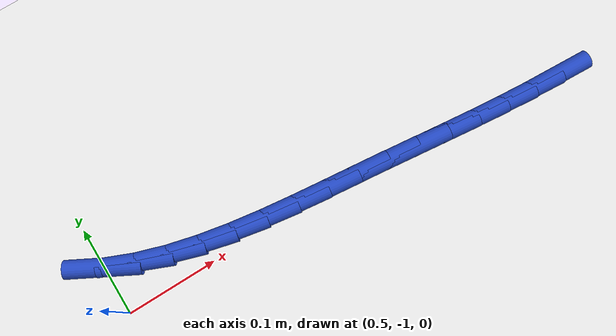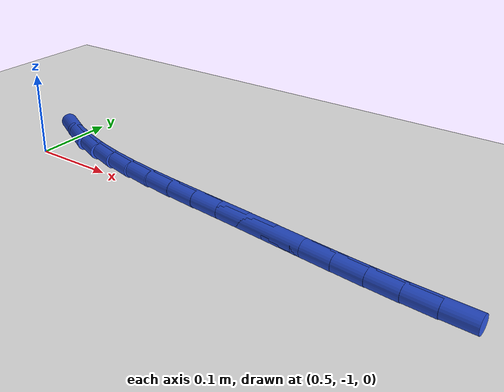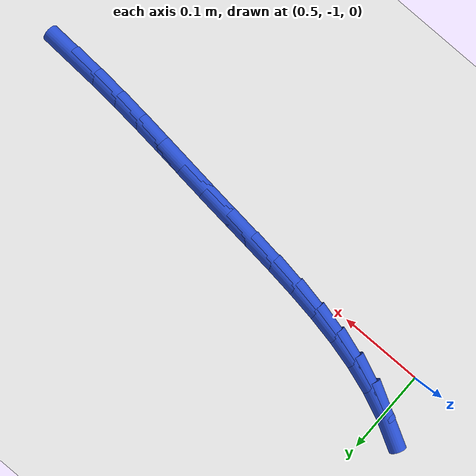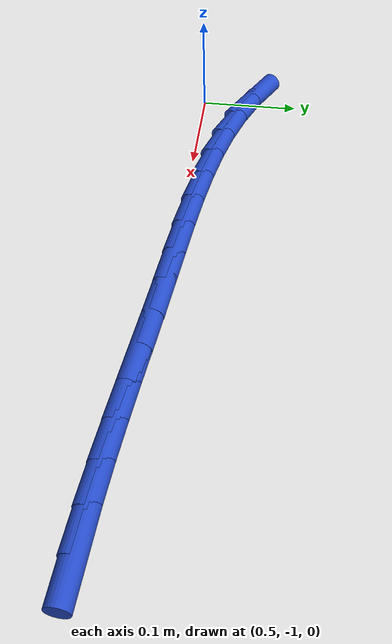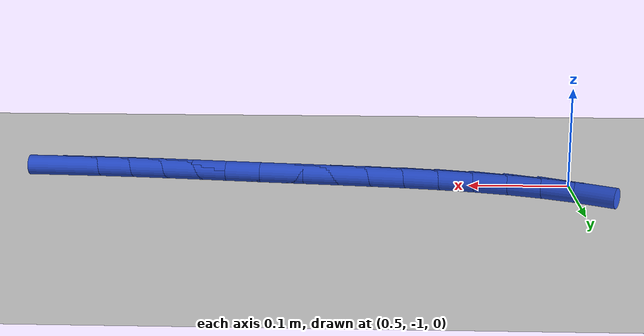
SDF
<sdf version="1.6">
 <world name="default">
  <model name="ground_plane">
   <static>1</static>
   <link name="link">
    <collision name="collision">
     <geometry><plane><normal>0 0 1</normal><size>100 100</size></plane></geometry>
     <surface><friction><ode><mu>100</mu><mu2>50</mu2></ode></friction></surface>
    </collision>
    <visual name="visual">
     <cast_shadows>0</cast_shadows>
     <geometry><plane><normal>0 0 1</normal><size>100 100</size></plane></geometry>
     <material>
      <script><uri>file://media/materials/scripts/gazebo.material</uri><name>Gazebo/WhiteGlow</name></script>
     </material>
    </visual>
   </link>
  </model>
  <model name="line">
   <link name="link_143">
    <pose>1.0131239039212816 -1.0255457856673817 0.01 0 1.57 -0.05281989189314579</pose>
    <collision name="collision">
     <geometry><cylinder><radius>0.01</radius><length>0.08</length></cylinder></geometry>
    </collision>
    <visual name="visual">
     <material>
      <script><name>Gazebo/Blue</name><uri>file://media/materials/scripts/gazebo.material</uri></script>
     </material>
     <geometry><cylinder><radius>0.01</radius><length>0.08</length></cylinder></geometry>
    </visual>
   </link>
   <link name="link_144">
    <pose>0.978989461430741 -1.023741129498226 0.01 0 1.57 -0.0766931520699578</pose>
    <collision name="collision">
     <geometry><cylinder><radius>0.01</radius><length>0.08</length></cylinder></geometry>
    </collision>
    <visual name="visual">
     <material>
      <script><name>Gazebo/Blue</name><uri>file://media/materials/scripts/gazebo.material</uri></script>
     </material>
     <geometry><cylinder><radius>0.01</radius><length>0.08</length></cylinder></geometry>
    </visual>
   </link>
   <link name="link_145">
    <pose>0.9447431755989452 -1.021109512283347 0.01 0 1.57 -0.09465148892315721</pose>
    <collision name="collision">
     <geometry><cylinder><radius>0.01</radius><length>0.08</length></cylinder></geometry>
    </collision>
    <visual name="visual">
     <material>
      <script><name>Gazebo/Blue</name><uri>file://media/materials/scripts/gazebo.material</uri></script>
     </material>
     <geometry><cylinder><radius>0.01</radius><length>0.08</length></cylinder></geometry>
    </visual>
   </link>
   <link name="link_146">
    <pose>0.9103620684519526 -1.0178455362581178 0.01 0 1.57 -0.10676817487113564</pose>
    <collision name="collision">
     <geometry><cylinder><radius>0.01</radius><length>0.08</length></cylinder></geometry>
    </collision>
    <visual name="visual">
     <material>
      <script><name>Gazebo/Blue</name><uri>file://media/materials/scripts/gazebo.material</uri></script>
     </material>
     <geometry><cylinder><radius>0.01</radius><length>0.08</length></cylinder></geometry>
    </visual>
   </link>
   <link name="link_147">
    <pose>0.8758231620158239 -1.0141438036579131 0.01 0 1.57 -0.11313586378779977</pose>
    <collision name="collision">
     <geometry><cylinder><radius>0.01</radius><length>0.08</length></cylinder></geometry>
    </collision>
    <visual name="visual">
     <material>
      <script><name>Gazebo/Blue</name><uri>file://media/materials/scripts/gazebo.material</uri></script>
     </material>
     <geometry><cylinder><radius>0.01</radius><length>0.08</length></cylinder></geometry>
    </visual>
   </link>
   <link name="link_148">
    <pose>0.8411034783166191 -1.0101989167181062 0.01 0 1.57 -0.11385387515639415</pose>
    <collision name="collision">
     <geometry><cylinder><radius>0.01</radius><length>0.08</length></cylinder></geometry>
    </collision>
    <visual name="visual">
     <material>
      <script><name>Gazebo/Blue</name><uri>file://media/materials/scripts/gazebo.material</uri></script>
     </material>
     <geometry><cylinder><radius>0.01</radius><length>0.08</length></cylinder></geometry>
    </visual>
   </link>
   <link name="link_149">
    <pose>0.8061800393803981 -1.0062054776740708 0.01 0 1.57 -0.10905201792721697</pose>
    <collision name="collision">
     <geometry><cylinder><radius>0.01</radius><length>0.08</length></cylinder></geometry>
    </collision>
    <visual name="visual">
     <material>
      <script><name>Gazebo/Blue</name><uri>file://media/materials/scripts/gazebo.material</uri></script>
     </material>
     <geometry><cylinder><radius>0.01</radius><length>0.08</length></cylinder></geometry>
    </visual>
   </link>
   <link name="link_150">
    <pose>0.7710303036990089 -1.002357060394126 0.01 0 1.57 -0.10381684319696666</pose>
    <collision name="collision">
     <geometry><cylinder><radius>0.01</radius><length>0.08</length></cylinder></geometry>
    </collision>
    <visual name="visual">
     <material>
      <script><name>Gazebo/Blue</name><uri>file://media/materials/scripts/gazebo.material</uri></script>
     </material>
     <geometry><cylinder><radius>0.01</radius><length>0.08</length></cylinder></geometry>
    </visual>
   </link>
   <link name="link_151">
    <pose>0.7357042434974115 -0.9986763874767594 0.01 0 1.57 -0.10865105151260408</pose>
    <collision name="collision">
     <geometry><cylinder><radius>0.01</radius><length>0.08</length></cylinder></geometry>
    </collision>
    <visual name="visual">
     <material>
      <script><name>Gazebo/Blue</name><uri>file://media/materials/scripts/gazebo.material</uri></script>
     </material>
     <geometry><cylinder><radius>0.01</radius><length>0.08</length></cylinder></geometry>
    </visual>
   </link>
   <link name="link_152">
    <pose>0.7004047454780686 -0.9948258962126145 0.01 0 1.57 -0.1249786844869138</pose>
    <collision name="collision">
     <geometry><cylinder><radius>0.01</radius><length>0.08</length></cylinder></geometry>
    </collision>
    <visual name="visual">
     <material>
      <script><name>Gazebo/Blue</name><uri>file://media/materials/scripts/gazebo.material</uri></script>
     </material>
     <geometry><cylinder><radius>0.01</radius><length>0.08</length></cylinder></geometry>
    </visual>
   </link>
   <link name="link_153">
    <pose>0.6653540778411358 -0.9904223587010622 0.01 0 1.57 -0.15321083549184172</pose>
    <collision name="collision">
     <geometry><cylinder><radius>0.01</radius><length>0.08</length></cylinder></geometry>
    </collision>
    <visual name="visual">
     <material>
      <script><name>Gazebo/Blue</name><uri>file://media/materials/scripts/gazebo.material</uri></script>
     </material>
     <geometry><cylinder><radius>0.01</radius><length>0.08</length></cylinder></geometry>
    </visual>
   </link>
   <link name="link_154">
    <pose>0.6307745087867711 -0.9850825470414747 0.01 0 1.57 -0.1940470991865286</pose>
    <collision name="collision">
     <geometry><cylinder><radius>0.01</radius><length>0.08</length></cylinder></geometry>
    </collision>
    <visual name="visual">
     <material>
      <script><name>Gazebo/Blue</name><uri>file://media/materials/scripts/gazebo.material</uri></script>
     </material>
     <geometry><cylinder><radius>0.01</radius><length>0.08</length></cylinder></geometry>
    </visual>
   </link>
   <link name="link_155">
    <pose>0.5968883065151315 -0.9784232333332225 0.01 0 1.57 -0.24838418799612685</pose>
    <collision name="collision">
     <geometry><cylinder><radius>0.01</radius><length>0.08</length></cylinder></geometry>
    </collision>
    <visual name="visual">
     <material>
      <script><name>Gazebo/Blue</name><uri>file://media/materials/scripts/gazebo.material</uri></script>
     </material>
     <geometry><cylinder><radius>0.01</radius><length>0.08</length></cylinder></geometry>
    </visual>
   </link>
   <link name="link_156">
    <pose>0.5639177392263741 -0.9700611896756772 0.01 0 1.57 -0.3171382410800643</pose>
    <collision name="collision">
     <geometry><cylinder><radius>0.01</radius><length>0.08</length></cylinder></geometry>
    </collision>
    <visual name="visual">
     <material>
      <script><name>Gazebo/Blue</name><uri>file://media/materials/scripts/gazebo.material</uri></script>
     </material>
     <geometry><cylinder><radius>0.01</radius><length>0.08</length></cylinder></geometry>
    </visual>
   </link>
   <link name="link_157">
    <pose>0.5320850751206558 -0.9596131881682098 0.01 0 1.57 -0.40093571998100264</pose>
    <collision name="collision">
     <geometry><cylinder><radius>0.01</radius><length>0.08</length></cylinder></geometry>
    </collision>
    <visual name="visual">
     <material>
      <script><name>Gazebo/Blue</name><uri>file://media/materials/scripts/gazebo.material</uri></script>
     </material>
     <geometry><cylinder><radius>0.01</radius><length>0.08</length></cylinder></geometry>
    </visual>
   </link>
   <link name="link_158">
    <pose>0.5016125823981339 -0.9466960009101918 0.01 0 1.57 -0.4968212240421471</pose>
    <collision name="collision">
     <geometry><cylinder><radius>0.01</radius><length>0.08</length></cylinder></geometry>
    </collision>
    <visual name="visual">
     <material>
      <script><name>Gazebo/Blue</name><uri>file://media/materials/scripts/gazebo.material</uri></script>
     </material>
     <geometry><cylinder><radius>0.01</radius><length>0.08</length></cylinder></geometry>
    </visual>
   </link>
  </model>
 </world>
</sdf>
